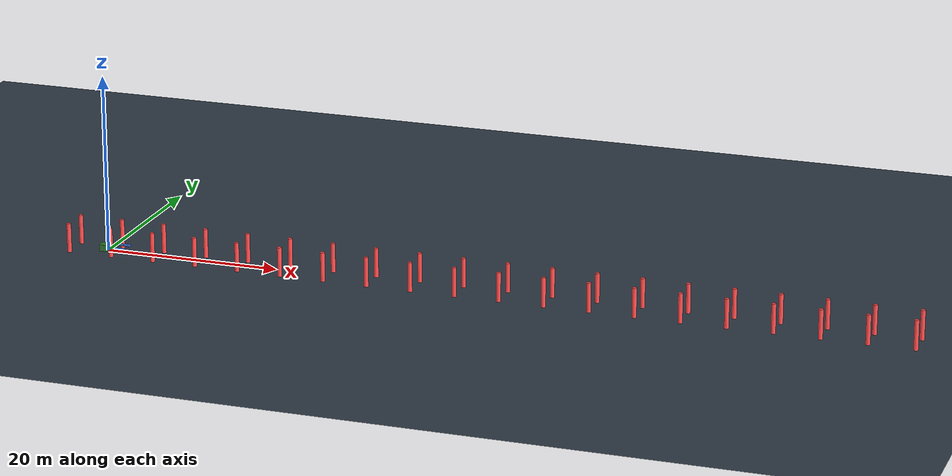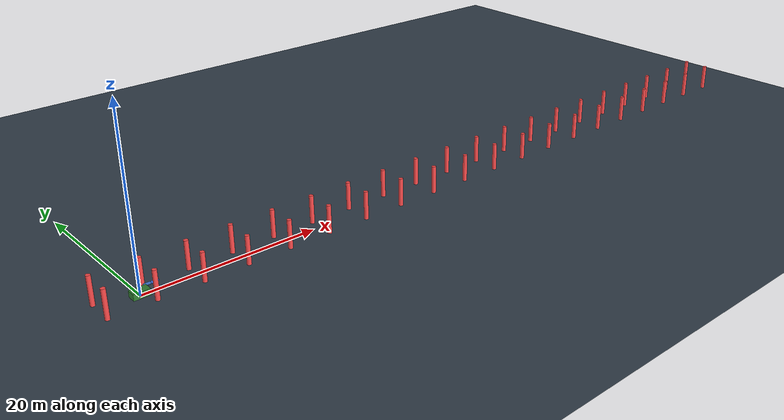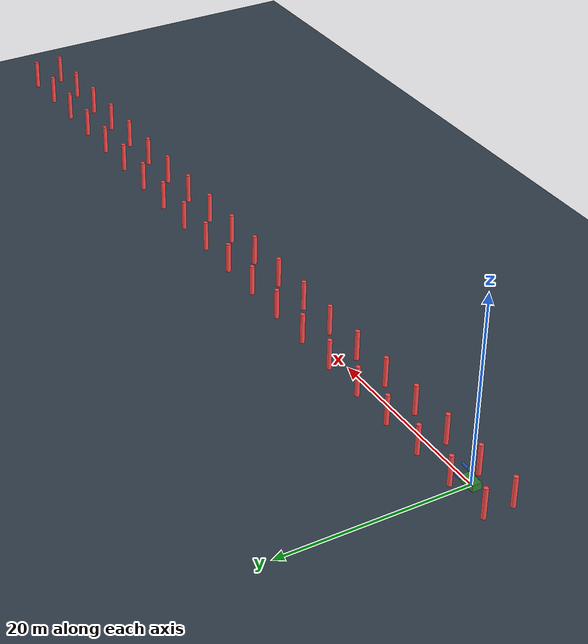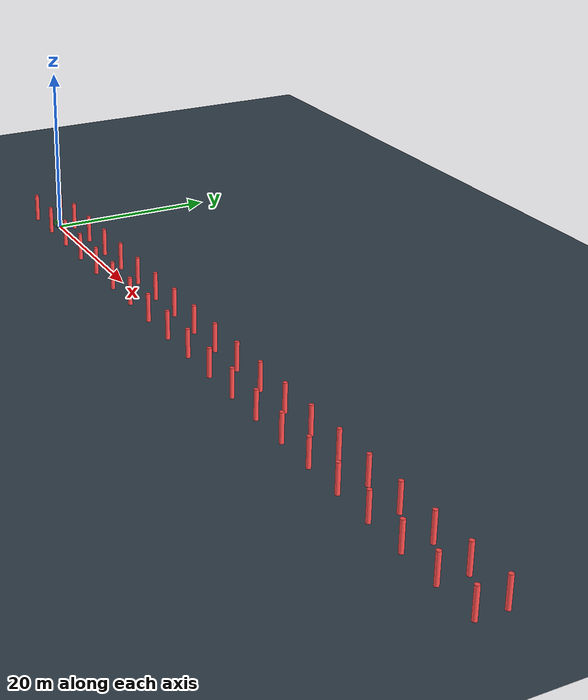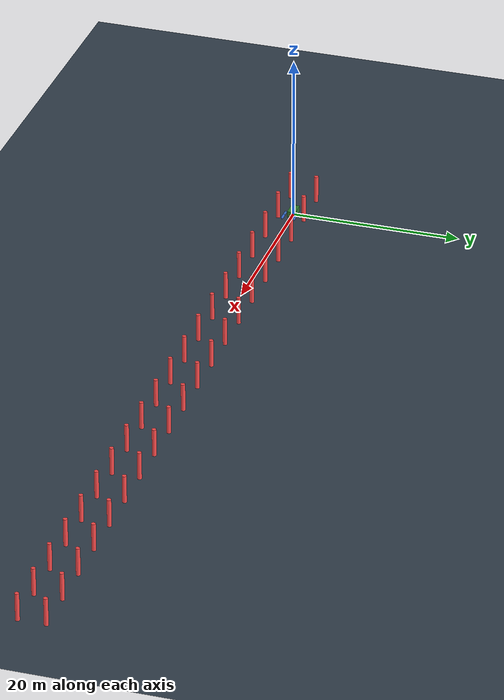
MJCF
<mujoco model="two_poles_solid_colors">
  <compiler angle="radian"/>

  <option integrator="RK4" iterations="50"/>

  <size nkey="1"/>

  <default>
    <joint limited="true" armature="1e-05" damping="1"/>
    <geom friction="0.03 0.03 0.001" solref="0.005" margin="0.005" density="20" rgba="0.3 0.6 0.3 1"/>
  </default>

  <worldbody>
    <geom name="ground" size="100 100 0.5" type="plane" rgba="0.2 0.25 0.3 1"/>
    <camera name="follow" pos="0 -2 0.5" quat="0.707107 0.707107 0 0" mode="trackcom"/>
    <light name="sun" pos="0 0 5" dir="0 0 -1" directional="true" cutoff="100" diffuse="1 1 1" specular="0.1 0.1 0.1"/>
    <body name="pole_0_0">
      <geom name="pole_0_0" size="0.25 2" pos="-4 -1.57 1.2" type="cylinder" rgba="1 0.3 0.3 1"/>
    </body>
    <body name="pole_0_1">
      <geom name="pole_0_1" size="0.25 2" pos="1 -1.57 1.2" type="cylinder" rgba="1 0.3 0.3 1"/>
    </body>
    <body name="pole_0_2">
      <geom name="pole_0_2" size="0.25 2" pos="6 -1.57 1.2" type="cylinder" rgba="1 0.3 0.3 1"/>
    </body>
    <body name="pole_0_3">
      <geom name="pole_0_3" size="0.25 2" pos="11 -1.57 1.2" type="cylinder" rgba="1 0.3 0.3 1"/>
    </body>
    <body name="pole_0_4">
      <geom name="pole_0_4" size="0.25 2" pos="16 -1.57 1.2" type="cylinder" rgba="1 0.3 0.3 1"/>
    </body>
    <body name="pole_0_5">
      <geom name="pole_0_5" size="0.25 2" pos="21 -1.57 1.2" type="cylinder" rgba="1 0.3 0.3 1"/>
    </body>
    <body name="pole_0_6">
      <geom name="pole_0_6" size="0.25 2" pos="26 -1.57 1.2" type="cylinder" rgba="1 0.3 0.3 1"/>
    </body>
    <body name="pole_0_7">
      <geom name="pole_0_7" size="0.25 2" pos="31 -1.57 1.2" type="cylinder" rgba="1 0.3 0.3 1"/>
    </body>
    <body name="pole_0_8">
      <geom name="pole_0_8" size="0.25 2" pos="36 -1.57 1.2" type="cylinder" rgba="1 0.3 0.3 1"/>
    </body>
    <body name="pole_0_9">
      <geom name="pole_0_9" size="0.25 2" pos="41 -1.57 1.2" type="cylinder" rgba="1 0.3 0.3 1"/>
    </body>
    <body name="pole_0_10">
      <geom name="pole_0_10" size="0.25 2" pos="46 -1.57 1.2" type="cylinder" rgba="1 0.3 0.3 1"/>
    </body>
    <body name="pole_0_11">
      <geom name="pole_0_11" size="0.25 2" pos="51 -1.57 1.2" type="cylinder" rgba="1 0.3 0.3 1"/>
    </body>
    <body name="pole_0_12">
      <geom name="pole_0_12" size="0.25 2" pos="56 -1.57 1.2" type="cylinder" rgba="1 0.3 0.3 1"/>
    </body>
    <body name="pole_0_13">
      <geom name="pole_0_13" size="0.25 2" pos="61 -1.57 1.2" type="cylinder" rgba="1 0.3 0.3 1"/>
    </body>
    <body name="pole_0_14">
      <geom name="pole_0_14" size="0.25 2" pos="66 -1.57 1.2" type="cylinder" rgba="1 0.3 0.3 1"/>
    </body>
    <body name="pole_0_15">
      <geom name="pole_0_15" size="0.25 2" pos="71 -1.57 1.2" type="cylinder" rgba="1 0.3 0.3 1"/>
    </body>
    <body name="pole_0_16">
      <geom name="pole_0_16" size="0.25 2" pos="76 -1.57 1.2" type="cylinder" rgba="1 0.3 0.3 1"/>
    </body>
    <body name="pole_0_17">
      <geom name="pole_0_17" size="0.25 2" pos="81 -1.57 1.2" type="cylinder" rgba="1 0.3 0.3 1"/>
    </body>
    <body name="pole_0_18">
      <geom name="pole_0_18" size="0.25 2" pos="86 -1.57 1.2" type="cylinder" rgba="1 0.3 0.3 1"/>
    </body>
    <body name="pole_0_19">
      <geom name="pole_0_19" size="0.25 2" pos="91 -1.57 1.2" type="cylinder" rgba="1 0.3 0.3 1"/>
    </body>
    <body name="pole_1_0">
      <geom name="pole_1_0" size="0.25 2" pos="-4 1.57 1.2" type="cylinder" rgba="1 0.3 0.3 1"/>
    </body>
    <body name="pole_1_1">
      <geom name="pole_1_1" size="0.25 2" pos="1 1.57 1.2" type="cylinder" rgba="1 0.3 0.3 1"/>
    </body>
    <body name="pole_1_2">
      <geom name="pole_1_2" size="0.25 2" pos="6 1.57 1.2" type="cylinder" rgba="1 0.3 0.3 1"/>
    </body>
    <body name="pole_1_3">
      <geom name="pole_1_3" size="0.25 2" pos="11 1.57 1.2" type="cylinder" rgba="1 0.3 0.3 1"/>
    </body>
    <body name="pole_1_4">
      <geom name="pole_1_4" size="0.25 2" pos="16 1.57 1.2" type="cylinder" rgba="1 0.3 0.3 1"/>
    </body>
    <body name="pole_1_5">
      <geom name="pole_1_5" size="0.25 2" pos="21 1.57 1.2" type="cylinder" rgba="1 0.3 0.3 1"/>
    </body>
    <body name="pole_1_6">
      <geom name="pole_1_6" size="0.25 2" pos="26 1.57 1.2" type="cylinder" rgba="1 0.3 0.3 1"/>
    </body>
    <body name="pole_1_7">
      <geom name="pole_1_7" size="0.25 2" pos="31 1.57 1.2" type="cylinder" rgba="1 0.3 0.3 1"/>
    </body>
    <body name="pole_1_8">
      <geom name="pole_1_8" size="0.25 2" pos="36 1.57 1.2" type="cylinder" rgba="1 0.3 0.3 1"/>
    </body>
    <body name="pole_1_9">
      <geom name="pole_1_9" size="0.25 2" pos="41 1.57 1.2" type="cylinder" rgba="1 0.3 0.3 1"/>
    </body>
    <body name="pole_1_10">
      <geom name="pole_1_10" size="0.25 2" pos="46 1.57 1.2" type="cylinder" rgba="1 0.3 0.3 1"/>
    </body>
    <body name="pole_1_11">
      <geom name="pole_1_11" size="0.25 2" pos="51 1.57 1.2" type="cylinder" rgba="1 0.3 0.3 1"/>
    </body>
    <body name="pole_1_12">
      <geom name="pole_1_12" size="0.25 2" pos="56 1.57 1.2" type="cylinder" rgba="1 0.3 0.3 1"/>
    </body>
    <body name="pole_1_13">
      <geom name="pole_1_13" size="0.25 2" pos="61 1.57 1.2" type="cylinder" rgba="1 0.3 0.3 1"/>
    </body>
    <body name="pole_1_14">
      <geom name="pole_1_14" size="0.25 2" pos="66 1.57 1.2" type="cylinder" rgba="1 0.3 0.3 1"/>
    </body>
    <body name="pole_1_15">
      <geom name="pole_1_15" size="0.25 2" pos="71 1.57 1.2" type="cylinder" rgba="1 0.3 0.3 1"/>
    </body>
    <body name="pole_1_16">
      <geom name="pole_1_16" size="0.25 2" pos="76 1.57 1.2" type="cylinder" rgba="1 0.3 0.3 1"/>
    </body>
    <body name="pole_1_17">
      <geom name="pole_1_17" size="0.25 2" pos="81 1.57 1.2" type="cylinder" rgba="1 0.3 0.3 1"/>
    </body>
    <body name="pole_1_18">
      <geom name="pole_1_18" size="0.25 2" pos="86 1.57 1.2" type="cylinder" rgba="1 0.3 0.3 1"/>
    </body>
    <body name="pole_1_19">
      <geom name="pole_1_19" size="0.25 2" pos="91 1.57 1.2" type="cylinder" rgba="1 0.3 0.3 1"/>
    </body>
    <body name="turtle" pos="0 0 0.36">
      <joint name="root_free" type="free" limited="false" actuatorfrclimited="false"/>
      <geom name="turtle_shell" size="0.9 0.5 0.36" type="box" rgba="0.2 0.5 0.2 1"/>
      <site name="shell_center" pos="0 0 0.08" size="0.01"/>
      <site name="ray_-80" pos="0.9 0 -0.18" quat="0.707085 0.696385 0.122797 0" size="0.001"/>
      <site name="ray_-72" pos="0.9 0 -0.18" quat="0.707104 0.672504 0.218501 0" size="0.001"/>
      <site name="ray_-64" pos="0.9 0 -0.18" quat="0.707117 0.635516 0.310008 0" size="0.001"/>
      <site name="ray_-56" pos="0.9 0 -0.18" quat="0.707113 0.586211 0.395408 0" size="0.001"/>
      <site name="ray_-48" pos="0.9 0 -0.18" quat="0.707113 0.525509 0.473108 0" size="0.001"/>
      <site name="ray_-40" pos="0.9 0 -0.18" quat="0.7071 0.4545 0.5417 0" size="0.001"/>
      <site name="ray_-32" pos="0.9 0 -0.18" quat="0.707089 0.374694 0.599691 0" size="0.001"/>
      <site name="ray_-24" pos="0.9 0 -0.18" quat="0.707093 0.287597 0.645993 0" size="0.001"/>
      <site name="ray_-16" pos="0.9 0 -0.18" quat="0.707111 0.194903 0.679711 0" size="0.001"/>
      <site name="ray_-8" pos="0.9 0 -0.18" quat="0.707117 0.0984023 0.700216 0" size="0.001"/>
      <site name="ray_+0" pos="0.9 0 -0.18" quat="0.707107 0 0.707107 0" size="0.001"/>
      <site name="ray_+8" pos="0.9 0 -0.18" quat="0.707117 -0.0984023 0.700216 0" size="0.001"/>
      <site name="ray_+16" pos="0.9 0 -0.18" quat="0.707111 -0.194903 0.679711 0" size="0.001"/>
      <site name="ray_+24" pos="0.9 0 -0.18" quat="0.707093 -0.287597 0.645993 0" size="0.001"/>
      <site name="ray_+32" pos="0.9 0 -0.18" quat="0.707089 -0.374694 0.599691 0" size="0.001"/>
      <site name="ray_+40" pos="0.9 0 -0.18" quat="0.7071 -0.4545 0.5417 0" size="0.001"/>
      <site name="ray_+48" pos="0.9 0 -0.18" quat="0.707113 -0.525509 0.473108 0" size="0.001"/>
      <site name="ray_+56" pos="0.9 0 -0.18" quat="0.707113 -0.586211 0.395408 0" size="0.001"/>
      <site name="ray_+64" pos="0.9 0 -0.18" quat="0.707117 -0.635516 0.310008 0" size="0.001"/>
      <site name="ray_+72" pos="0.9 0 -0.18" quat="0.707104 -0.672504 0.218501 0" size="0.001"/>
      <site name="ray_+80" pos="0.9 0 -0.18" quat="0.707085 -0.696385 0.122797 0" size="0.001"/>
      <camera name="topdown" pos="0 0 20" quat="0.707107 0 0 -0.707107"/>
      <body name="flipper_L_upper" pos="0.8 0.7 0.2">
        <joint name="shoulder_L" pos="0 0 0" axis="0 0 1" range="0 2.96706"/>
        <geom name="flipper_L_upper_geom" size="0.15 0.3" pos="0.3 0 0" quat="0.707107 0 -0.707107 0" type="capsule" rgba="0.2 0.4 0.7 1"/>
        <body name="flipper_L_fore" pos="0.8 0 0">
          <joint name="elbow_L" pos="0 0 0" axis="0 0 1" range="0 1.39626"/>
          <geom name="flipper_L_fore_geom" size="0.15 0.3" pos="0.3 0 0" quat="0.707107 0 -0.707107 0" type="capsule" rgba="0.2 0.4 0.8 1"/>
        </body>
      </body>
      <body name="flipper_R_upper" pos="0.8 -0.7 0.2">
        <joint name="shoulder_R" pos="0 0 0" axis="0 0 -1" range="0 2.96706"/>
        <geom name="flipper_R_upper_geom" size="0.15 0.3" pos="0.3 0 0" quat="0.707107 0 -0.707107 0" type="capsule" rgba="0.2 0.4 0.7 1"/>
        <body name="flipper_R_fore" pos="0.8 0 0">
          <joint name="elbow_R" pos="0 0 0" axis="0 0 -1" range="0 1.39626"/>
          <geom name="flipper_R_fore_geom" size="0.15 0.3" pos="0.3 0 0" quat="0.707107 0 -0.707107 0" type="capsule" rgba="0.2 0.4 0.8 1"/>
        </body>
      </body>
    </body>
  </worldbody>

  <actuator>
    <general name="motor_shoulder_L" joint="shoulder_L" ctrllimited="true" ctrlrange="-1 1" gear="400 0 0 0 0 0"/>
    <general name="motor_elbow_L" joint="elbow_L" ctrllimited="true" ctrlrange="-1 1" gear="400 0 0 0 0 0"/>
    <general name="motor_shoulder_R" joint="shoulder_R" ctrllimited="true" ctrlrange="-1 1" gear="400 0 0 0 0 0"/>
    <general name="motor_elbow_R" joint="elbow_R" ctrllimited="true" ctrlrange="-1 1" gear="400 0 0 0 0 0"/>
  </actuator>

  <sensor>
    <accelerometer site="shell_center"/>
    <gyro site="shell_center"/>
    <rangefinder site="ray_-80" name="rf_-80"/>
    <rangefinder site="ray_-72" name="rf_-72"/>
    <rangefinder site="ray_-64" name="rf_-64"/>
    <rangefinder site="ray_-56" name="rf_-56"/>
    <rangefinder site="ray_-48" name="rf_-48"/>
    <rangefinder site="ray_-40" name="rf_-40"/>
    <rangefinder site="ray_-32" name="rf_-32"/>
    <rangefinder site="ray_-24" name="rf_-24"/>
    <rangefinder site="ray_-16" name="rf_-16"/>
    <rangefinder site="ray_-8" name="rf_-8"/>
    <rangefinder site="ray_+0" name="rf_+0"/>
    <rangefinder site="ray_+8" name="rf_+8"/>
    <rangefinder site="ray_+16" name="rf_+16"/>
    <rangefinder site="ray_+24" name="rf_+24"/>
    <rangefinder site="ray_+32" name="rf_+32"/>
    <rangefinder site="ray_+40" name="rf_+40"/>
    <rangefinder site="ray_+48" name="rf_+48"/>
    <rangefinder site="ray_+56" name="rf_+56"/>
    <rangefinder site="ray_+64" name="rf_+64"/>
    <rangefinder site="ray_+72" name="rf_+72"/>
    <rangefinder site="ray_+80" name="rf_+80"/>
  </sensor>

  <keyframe>
    <key name="tucked" time="1.454" qpos="0.998676 0 28.1197 0 0.0243554 0 0.999703 2.79642 -5.7604e-07 2.79642 -5.7604e-07" qvel="-0.00152024 0 11.8301 0 -0.0569859 0 -0.0053 -9.02078e-07 -0.0053 -9.02078e-07"/>
  </keyframe>
</mujoco>
